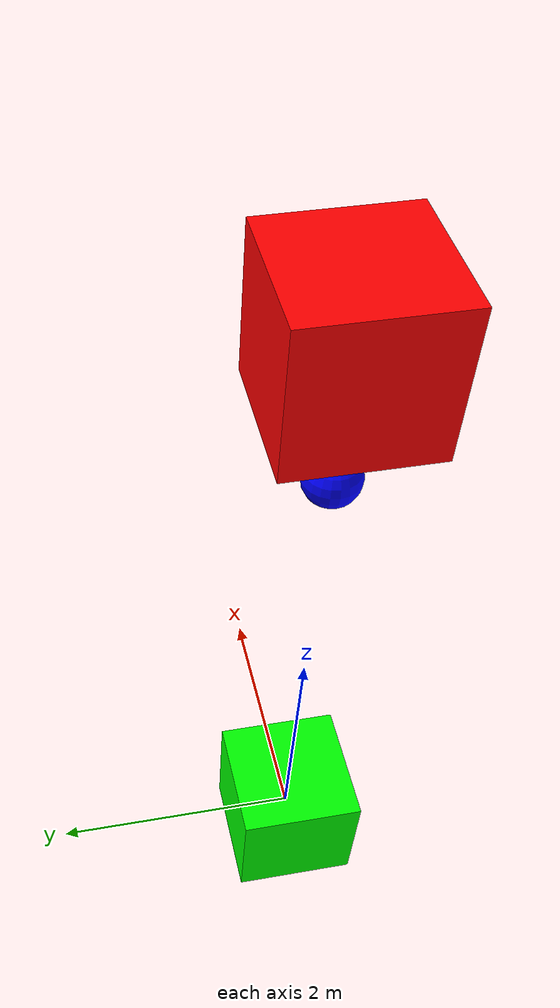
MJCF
<mujoco>
  <option gravity="0 0 -9.81" />
  <worldbody>
    <body name="object_1" pos="0 0 5">
      <geom type="box" size="0.5 0.5 0.5" density="5" rgba="1 0 0 1" />
      <joint name="object_1_joint" type="free" />
    </body>
    <body name="object_2" pos="0 0 0">
      <geom type="box" size="0.5 0.5 0.5" density="3" rgba="0 1 0 1" />
      <joint name="object_2_joint" type="free" />
    </body>
    <body name="object_3" pos="0 0 4">
      <geom type="sphere" size="0.2" density="2" rgba="0 0 1 1" />
      <joint name="object_3_joint" type="hinge" axis="0 0 1" />
    </body>
    <body name="object_4" pos="0 0 -10">
      <geom type="plane" size="30 30 0.1" rgba="0.7 0.7 0.7 1" friction="1 1 1" />
    </body>
  </worldbody>
<joint name="joint_object_1_object_3" type="revolute" body1="object_1" body2="object_3" /><joint name="joint_object_2_object_3" type="revolute" body1="object_2" body2="object_3" /></mujoco>
